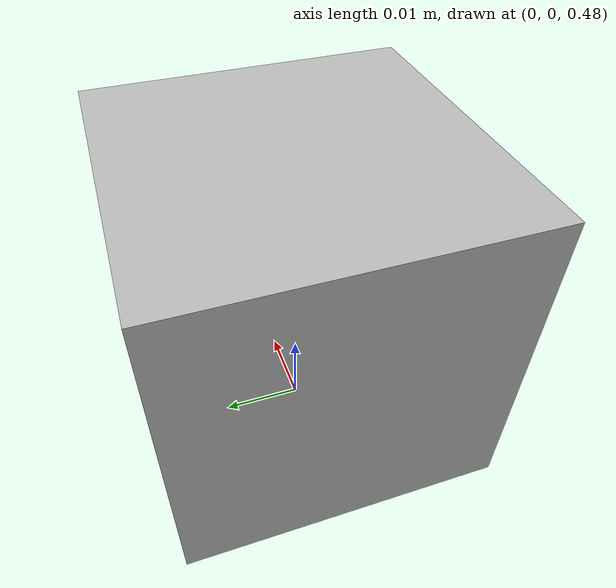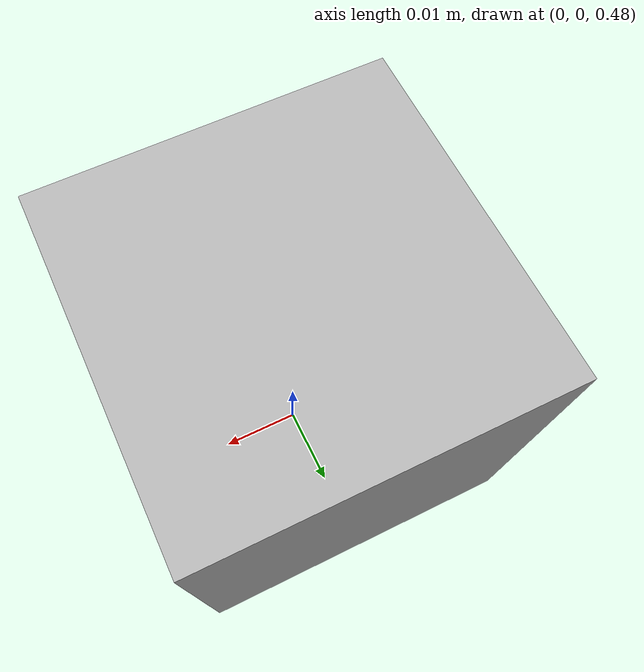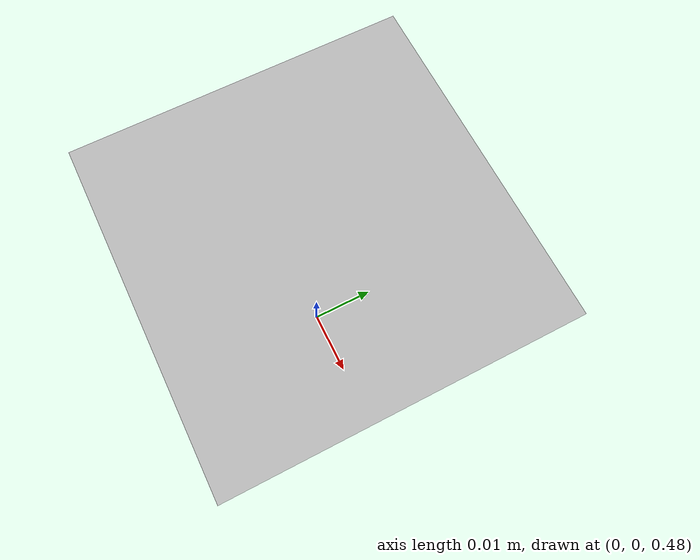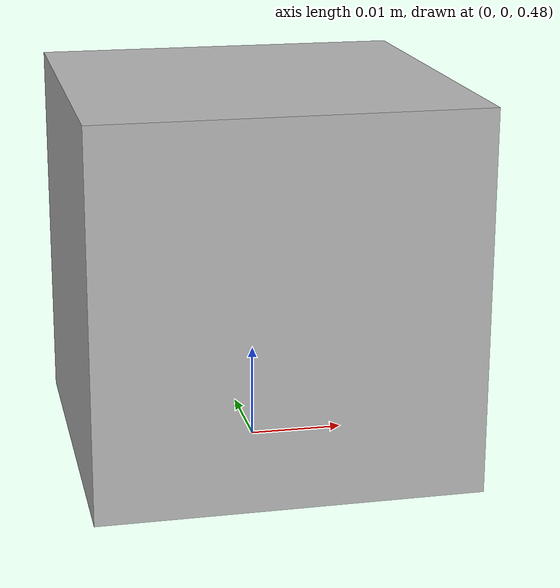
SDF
<?xml version="1.0"?>
<sdf version="1.9">
  <world name="smoke">
    <physics name="1ms" type="ignored">
      <max_step_size>0.001</max_step_size>
      <real_time_factor>0</real_time_factor>
    </physics>
    <plugin filename="gz-sim-physics-system" name="gz::sim::systems::Physics"/>
    <plugin filename="gz-sim-scene-broadcaster-system" name="gz::sim::systems::SceneBroadcaster"/>
    <gravity>0 0 -9.81</gravity>
    <model name="ground">
      <static>true</static>
      <link name="l"><collision name="c"><geometry><plane><normal>0 0 1</normal><size>10 10</size></plane></geometry></collision></link>
    </model>
    <model name="cube">
      <pose>0 0 0.5 0 0 0</pose>
      <link name="l">
        <inertial><mass>0.05</mass><inertia><ixx>1.3e-5</ixx><iyy>1.3e-5</iyy><izz>1.3e-5</izz><ixy>0</ixy><ixz>0</ixz><iyz>0</iyz></inertia></inertial>
        <collision name="c"><geometry><box><size>0.04 0.04 0.04</size></box></geometry></collision>
        <visual name="v"><geometry><box><size>0.04 0.04 0.04</size></box></geometry></visual>
      </link>
    </model>
  </world>
</sdf>
